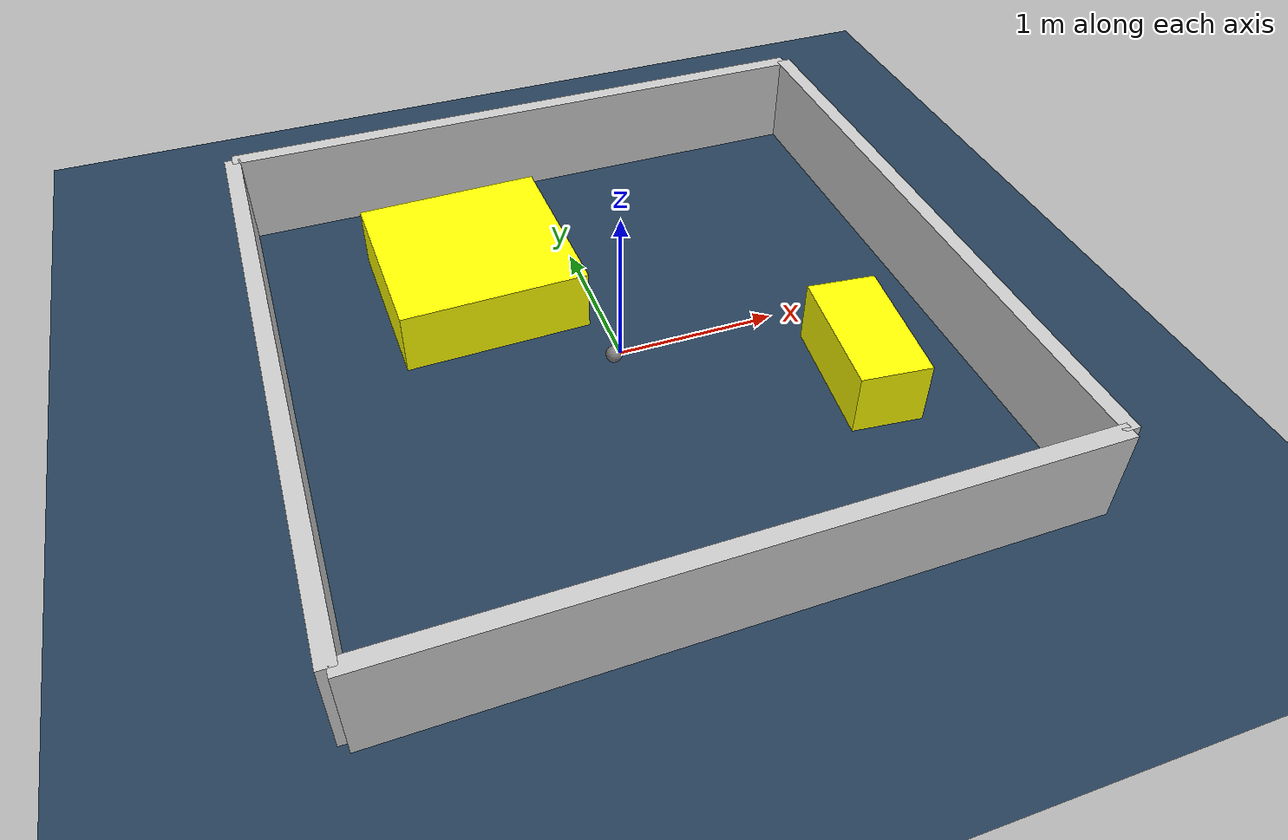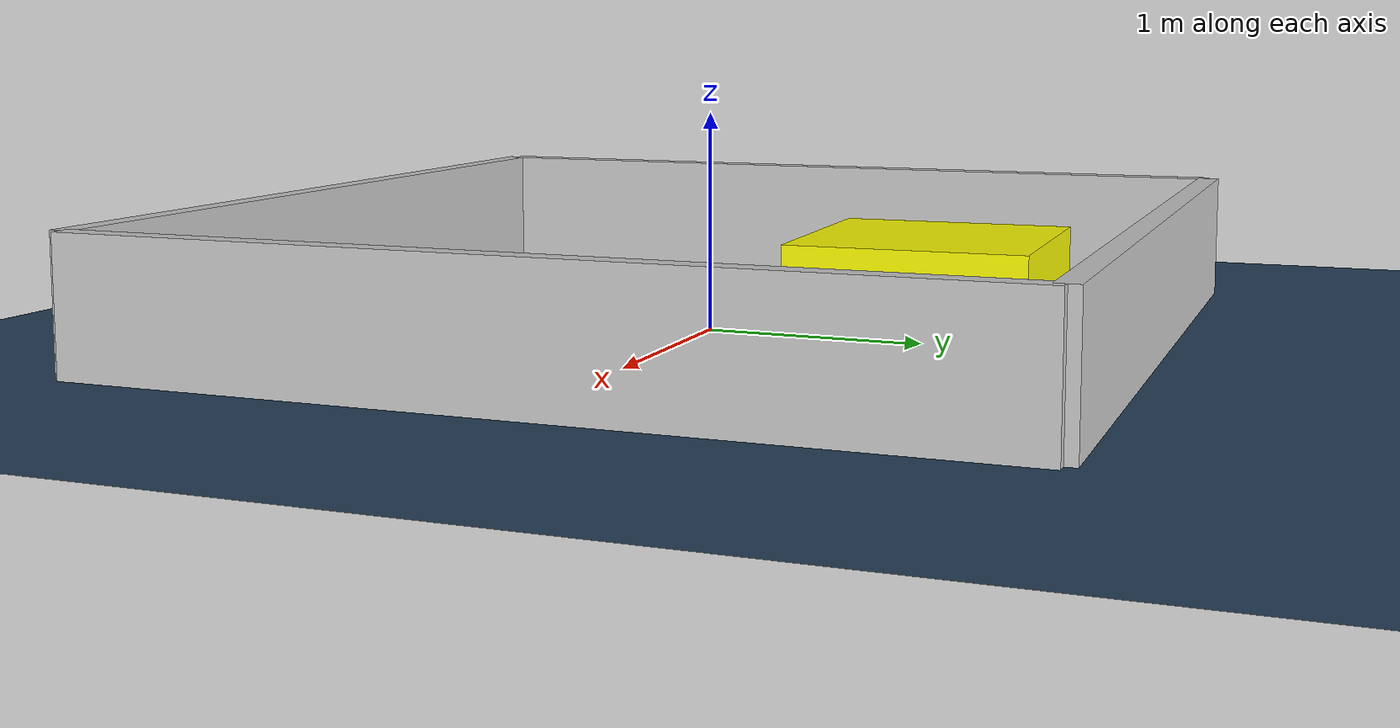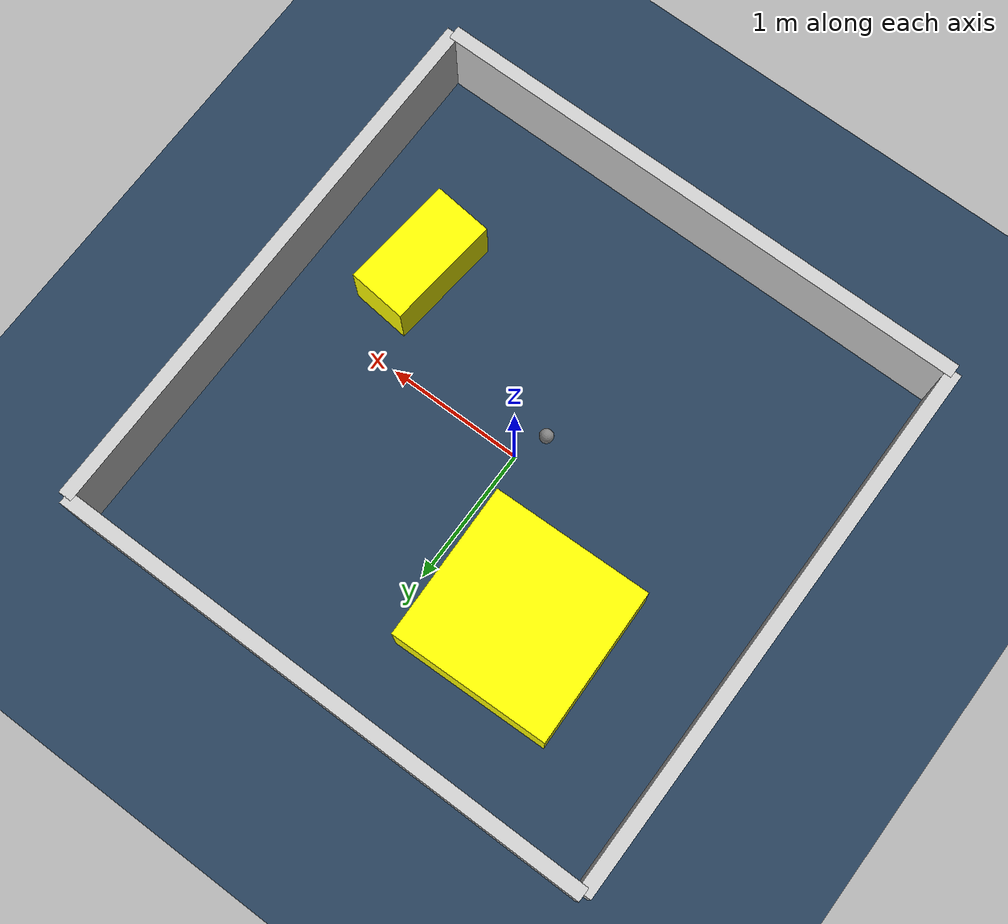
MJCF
<?xml version="1.0" ?>
<mujoco model="generated_environment">
  <option timestep="0.01" integrator="RK4" cone="elliptic"/>
  <default>
    <geom density="1"/>
  </default>
  <asset>
    <texture builtin="gradient" height="3072" rgb1="0.3 0.5 0.7" rgb2="0 0 0" type="skybox" width="512"/>
    <texture builtin="checker" height="300" mark="edge" markrgb="0.8 0.8 0.8" name="groundplane" rgb1="0.2 0.3 0.4" rgb2="0.1 0.2 0.3" type="2d" width="300"/>
    <material name="groundplane" reflectance="0.2" texrepeat="5 5" texture="groundplane" texuniform="true"/>
    <material name="robot" rgba="0.0 1.0 0.0 1"/>
  </asset>
  <worldbody>
    <light dir="0 0 -1" directional="true" pos="0 0 1.5"/>
    <geom condim="4" friction="1.0 0.005 0.001" material="groundplane" name="floor" size="0 0 0.05" type="plane"/>
    <body name="walls">
      <geom name="wall_1" condim="4" pos="-2.0 0.0 0.3" rgba="0.800000011920929 0.800000011920929 0.800000011920929 1.0" size="0.05 2.0 0.3" type="box"/>
      <geom name="wall_2" condim="4" pos="2.0 0.0 0.3" rgba="0.800000011920929 0.800000011920929 0.800000011920929 1.0" size="0.05 2.0 0.3" type="box"/>
      <geom name="wall_3" condim="4" pos="0.0 -2.0 0.3" rgba="0.800000011920929 0.800000011920929 0.800000011920929 1.0" size="2.0 0.05 0.3" type="box"/>
      <geom name="wall_4" condim="4" pos="0.0 2.0 0.3" rgba="0.800000011920929 0.800000011920929 0.800000011920929 1.0" size="2.0 0.05 0.3" type="box"/>
    </body>
    <body name="robot">
      <joint name="joint_x" type="slide" pos="0 0 0" axis="1 0 0"/>
      <joint name="joint_y" type="slide" pos="0 0 0" axis="0 1 0"/>
      <geom name="robot" type="sphere" pos="-0.11251922193581887 -0.20008404698626658 0.2" size="0.05" mass="5." friction="1.0 0.005 0.0001" condim="4"/>
      <site name="sensor_ball"/>
    </body>
    <body name="obstacle_1_movable">
      <geom name="obstacle_1_movable" condim="4" pos="-0.6927882305939284 0.8642029919085186 0.2" euler="0 0 181.42966261896618" friction="1.0 0.005 0.001" rgba="1 1 0 1" size="0.5822813047863984 0.5685812373185194 0.2" type="box" mass="0.1"/>
      <joint type="free"/>
    </body>
    <body name="obstacle_2_movable">
      <geom name="obstacle_2_movable" condim="4" pos="1.276351557949185 -0.6690605071912414 0.2" euler="0 0 84.05111854043115" friction="1.0 0.005 0.001" rgba="1 1 0 1" size="0.4174384734311011 0.21557932906411384 0.2" type="box" mass="0.1"/>
      <joint type="free"/>
    </body>
  </worldbody>
  <actuator>
    <motor name="actuator_x" joint="joint_x" gear="1" ctrlrange="-1 1"/>
    <motor name="actuator_y" joint="joint_y" gear="1" ctrlrange="-1 1"/>
  </actuator>
</mujoco>
